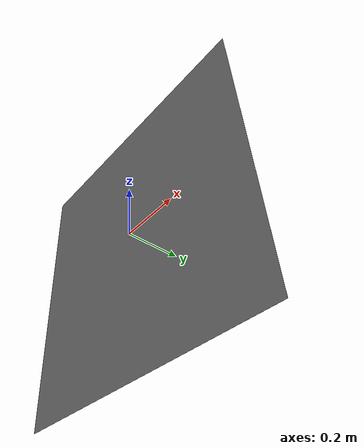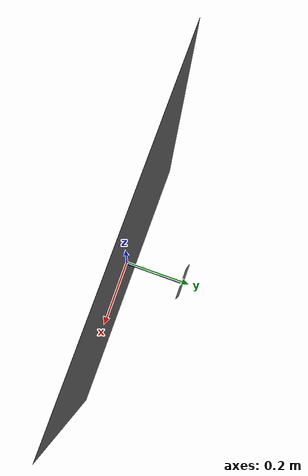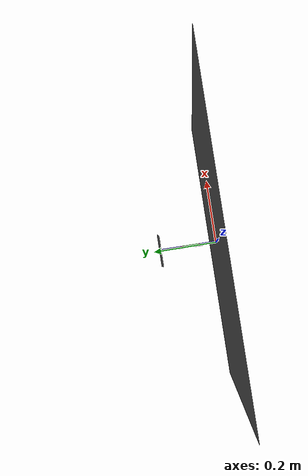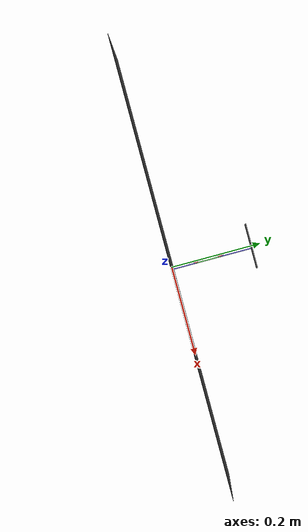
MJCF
<?xml version='1.0' encoding='UTF-8'?>
<mujoco>

    <option timestep="1e-4"/>
    <option gravity="0 0 -9.8"/>

    <asset>
        <texture type="skybox" builtin="gradient" rgb1="1 1 1" rgb2="0.5 0.5 0.5" width="265" height="256"/>
        <texture name="grid" type="2d" builtin="checker" rgb1="0.1 0.1 0.1" rgb2="0.6 0.6 0.6" width="300" height="300"/>
        <material name="grid" texture="grid" texrepeat="10 10" reflectance="0.2"/>
    </asset>

    <worldbody>
        <light pos="0 0 10"/>

        <geom type="plane" size="0.5 0.5 1" material="grid" euler="90 0 0" contype="0"/>
        <site name="fix1" pos="0 0 0.016" size="0.001"/>
        <site name="fix2" pos="0 0 -0.016" size="0.001"/>

        <body>
            <joint type="hinge" axis="0 1 0"/>
            <geom pos="0.005 0 0" size="0.001" mass="0.001" contype="0"/>
            <body name="link 1">
                <geom name="link 1 beam" type="cylinder" pos="0.005 0.027 0" size="0.001 0.027" euler="90 0 0" mass="1." contype="0" rgba="0 0 1 0.6"/>
                <body name="link 2" pos="0 0.054 0">
                    <joint type="hinge" axis="1 0 0"/>
                    <geom name="joint 1" type="cylinder" pos="0.0025 0 0" size="0.005 0.002" euler="0 90 0" mass="0.001" contype="0" rgba="1 0 0 0.6"/>
                    <geom name="circ 1" type="cylinder" size="0.016 0.002" euler="0 90 0" mass="1" contype="0"/>
                    <site name="fix1_1" pos="0 0 0.016" size="0.001"/>
                    <site name="fix2_1" pos="0 0 -0.016" size="0.001"/>

                    <geom name="link 2 beam" type="cylinder" pos="0.005 0.0275 0" size="0.001 0.0275" euler="90 0 0" mass="1." contype="0" rgba="0 1 0 0.6"/>
                    <body name="link 3" pos="0 0.055 0">
                        <joint type="hinge" axis="1 0 0"/>
                        <geom name="joint 2" type="cylinder" pos="0.0025 0 0" size="0.005 0.002" euler="0 90 0" mass="0.001" contype="0" rgba="1 0 0 0.6"/>
                        <geom name="circ 2" type="cylinder" size="0.0105 0.002" euler="0 90 0" mass="1" contype="0"/>
                        <site name="fix1_2" pos="0 0 -0.0105" size="0.001"/>
                        <site name="fix2_2" pos="0 0 0.0105" size="0.001"/>

                        <geom name="link 3 beam" type="cylinder" pos="0.005 0.0355 0" size="0.001 0.0355" euler="90 0 0" mass="1." contype="0" rgba="0 0 1 0.6"/>
                        <body name="ee" pos="0 0.071 0">
                            <joint type="hinge" axis="1 0 0"/>
                            <geom pos="0.005 0 0" size="0.001" mass="0.001" contype="0"/>
                            <geom type="box" size="0.05 0.001 0.05" mass="10" contype="0"/>
                            <site name="rfix1" pos="0 0 0.0105" size="0.001"/>
                            <site name="rfix2" pos="0 0 -0.0105" size="0.001"/>
                        </body>
                    </body>
                </body>

            </body>
        </body>

    </worldbody>

  <tendon>
    <spatial width=".0005">
      <site site="fix1"/>
      <site site="fix1_1"/>
      <site site="fix1_2"/>
      <site site="rfix2"/>
    </spatial>
  </tendon>
  <tendon>
    <spatial width=".0005">
      <site site="fix2"/>
      <site site="fix2_1"/>
      <site site="fix2_2"/>
      <site site="rfix1"/>
    </spatial>
  </tendon>

</mujoco>
